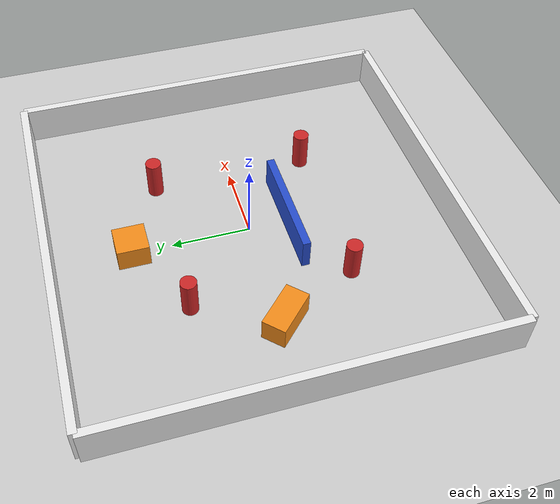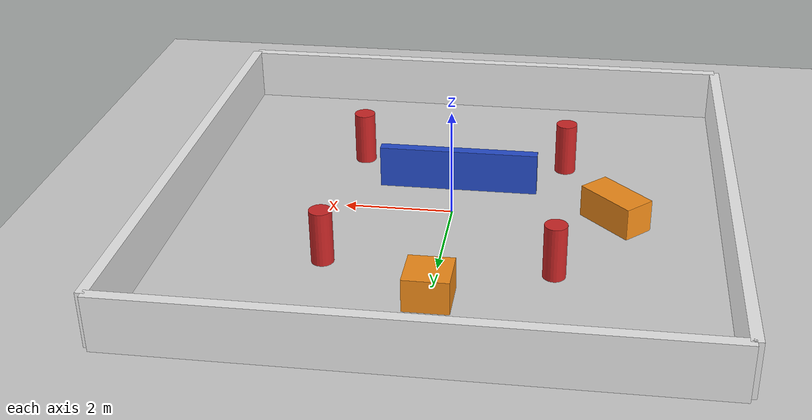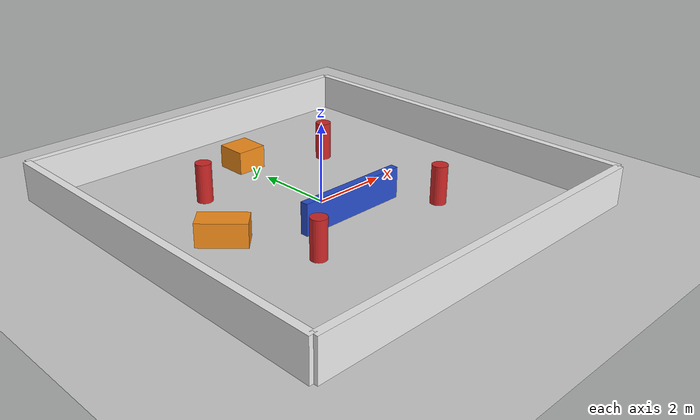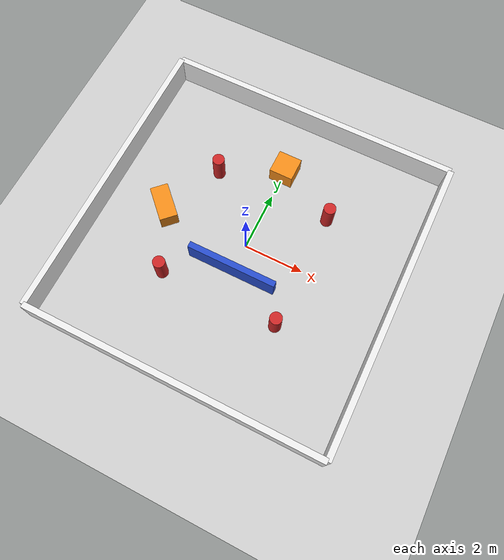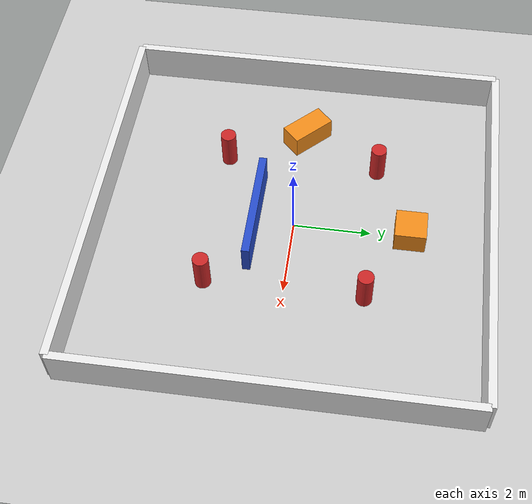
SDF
<?xml version="1.0" ?>
<sdf version="1.6">
  <world name="my_robot_world">

    <!--       PHYSICS & SCENE         -->
    <physics type="ode">
      <real_time_update_rate>1000.0</real_time_update_rate>
      <max_step_size>0.001</max_step_size>
      <real_time_factor>1</real_time_factor>
    </physics>

    <scene>
      <ambient>0.4 0.4 0.4 1</ambient>
      <background>0.7 0.7 0.7 1</background>
      <shadows>true</shadows>
    </scene>

    <!--     LIGHTING (Sun)            -->
    <light name="sun" type="directional">
      <cast_shadows>true</cast_shadows>
      <pose>0 0 10 0 0 0</pose>
      <diffuse>0.8 0.8 0.8 1</diffuse>
      <specular>0.2 0.2 0.2 1</specular>
      <attenuation>
        <range>1000</range>
        <constant>0.9</constant>
        <linear>0.01</linear>
        <quadratic>0.001</quadratic>
      </attenuation>
      <direction>-0.5 0.1 -0.9</direction>
    </light>

    <!--         GROUND PLANE          -->
    <model name="ground_plane">
      <static>true</static>
      <link name="link">
        <collision name="collision">
          <geometry>
            <plane>
              <normal>0 0 1</normal>
              <size>50 50</size>
            </plane>
          </geometry>
          <surface>
            <friction>
              <ode>
                <mu>100</mu>
                <mu2>50</mu2>
              </ode>
            </friction>
          </surface>
        </collision>
        <visual name="visual">
          <cast_shadows>false</cast_shadows>
          <geometry>
            <plane>
              <normal>0 0 1</normal>
              <size>50 50</size>
            </plane>
          </geometry>
          <material>
            <script>
              <uri>file://media/materials/scripts/gazebo.material</uri>
              <name>Gazebo/Grey</name>
            </script>
          </material>
        </visual>
      </link>
    </model>

    <!--       OUTER ROOM WALLS        -->
    <!-- North Wall -->
    <model name="wall_north">
      <static>true</static>
      <pose>0 5 0.5 0 0 0</pose>
      <link name="link">
        <collision name="collision">
          <geometry><box><size>10 0.2 1.0</size></box></geometry>
        </collision>
        <visual name="visual">
          <geometry><box><size>10 0.2 1.0</size></box></geometry>
          <material>
            <script>
              <uri>file://media/materials/scripts/gazebo.material</uri>
              <name>Gazebo/White</name>
            </script>
          </material>
        </visual>
      </link>
    </model>

    <!-- South Wall -->
    <model name="wall_south">
      <static>true</static>
      <pose>0 -5 0.5 0 0 0</pose>
      <link name="link">
        <collision name="collision">
          <geometry><box><size>10 0.2 1.0</size></box></geometry>
        </collision>
        <visual name="visual">
          <geometry><box><size>10 0.2 1.0</size></box></geometry>
          <material>
            <script>
              <uri>file://media/materials/scripts/gazebo.material</uri>
              <name>Gazebo/White</name>
            </script>
          </material>
        </visual>
      </link>
    </model>

    <!-- East Wall -->
    <model name="wall_east">
      <static>true</static>
      <pose>5 0 0.5 0 0 1.5707</pose>
      <link name="link">
        <collision name="collision">
          <geometry><box><size>10 0.2 1.0</size></box></geometry>
        </collision>
        <visual name="visual">
          <geometry><box><size>10 0.2 1.0</size></box></geometry>
          <material>
            <script>
              <uri>file://media/materials/scripts/gazebo.material</uri>
              <name>Gazebo/White</name>
            </script>
          </material>
        </visual>
      </link>
    </model>

    <!-- West Wall -->
    <model name="wall_west">
      <static>true</static>
      <pose>-5 0 0.5 0 0 1.5707</pose>
      <link name="link">
        <collision name="collision">
          <geometry><box><size>10 0.2 1.0</size></box></geometry>
        </collision>
        <visual name="visual">
          <geometry><box><size>10 0.2 1.0</size></box></geometry>
          <material>
            <script>
              <uri>file://media/materials/scripts/gazebo.material</uri>
              <name>Gazebo/White</name>
            </script>
          </material>
        </visual>
      </link>
    </model>

    <!--    INNER OBSTACLES / PILLARS  -->
    <!-- Pillar 1 -->
    <model name="pillar_1">
      <static>true</static>
      <pose>2 2 0.5 0 0 0</pose>
      <link name="link">
        <collision name="collision">
          <geometry><cylinder><radius>0.2</radius><length>1.0</length></cylinder></geometry>
        </collision>
        <visual name="visual">
          <geometry><cylinder><radius>0.2</radius><length>1.0</length></cylinder></geometry>
          <material>
            <script>
              <uri>file://media/materials/scripts/gazebo.material</uri>
              <name>Gazebo/Red</name>
            </script>
          </material>
        </visual>
      </link>
    </model>

    <!-- Pillar 2 -->
    <model name="pillar_2">
      <static>true</static>
      <pose>-2 2 0.5 0 0 0</pose>
      <link name="link">
        <collision name="collision">
          <geometry><cylinder><radius>0.2</radius><length>1.0</length></cylinder></geometry>
        </collision>
        <visual name="visual">
          <geometry><cylinder><radius>0.2</radius><length>1.0</length></cylinder></geometry>
          <material>
            <script>
              <uri>file://media/materials/scripts/gazebo.material</uri>
              <name>Gazebo/Red</name>
            </script>
          </material>
        </visual>
      </link>
    </model>

    <!-- Pillar 3 -->
    <model name="pillar_3">
      <static>true</static>
      <pose>2 -2 0.5 0 0 0</pose>
      <link name="link">
        <collision name="collision">
          <geometry><cylinder><radius>0.2</radius><length>1.0</length></cylinder></geometry>
        </collision>
        <visual name="visual">
          <geometry><cylinder><radius>0.2</radius><length>1.0</length></cylinder></geometry>
          <material>
            <script>
              <uri>file://media/materials/scripts/gazebo.material</uri>
              <name>Gazebo/Red</name>
            </script>
          </material>
        </visual>
      </link>
    </model>

    <!-- Pillar 4 -->
    <model name="pillar_4">
      <static>true</static>
      <pose>-2 -2 0.5 0 0 0</pose>
      <link name="link">
        <collision name="collision">
          <geometry><cylinder><radius>0.2</radius><length>1.0</length></cylinder></geometry>
        </collision>
        <visual name="visual">
          <geometry><cylinder><radius>0.2</radius><length>1.0</length></cylinder></geometry>
          <material>
            <script>
              <uri>file://media/materials/scripts/gazebo.material</uri>
              <name>Gazebo/Red</name>
            </script>
          </material>
        </visual>
      </link>
    </model>

    <!-- Box Obstacle 1 -->
    <model name="box_1">
      <static>true</static>
      <pose>0 3 0.3 0 0 0</pose>
      <link name="link">
        <collision name="collision">
          <geometry><box><size>0.8 0.8 0.6</size></box></geometry>
        </collision>
        <visual name="visual">
          <geometry><box><size>0.8 0.8 0.6</size></box></geometry>
          <material>
            <script>
              <uri>file://media/materials/scripts/gazebo.material</uri>
              <name>Gazebo/Orange</name>
            </script>
          </material>
        </visual>
      </link>
    </model>

    <!-- Box Obstacle 2 -->
    <model name="box_2">
      <static>true</static>
      <pose>-3 0 0.3 0 0 0.785</pose>
      <link name="link">
        <collision name="collision">
          <geometry><box><size>0.6 1.2 0.6</size></box></geometry>
        </collision>
        <visual name="visual">
          <geometry><box><size>0.6 1.2 0.6</size></box></geometry>
          <material>
            <script>
              <uri>file://media/materials/scripts/gazebo.material</uri>
              <name>Gazebo/Orange</name>
            </script>
          </material>
        </visual>
      </link>
    </model>

    <!-- Inner short wall (partial divider) -->
    <model name="inner_wall">
      <static>true</static>
      <pose>0 -1 0.4 0 0 0</pose>
      <link name="link">
        <collision name="collision">
          <geometry><box><size>3.0 0.2 0.8</size></box></geometry>
        </collision>
        <visual name="visual">
          <geometry><box><size>3.0 0.2 0.8</size></box></geometry>
          <material>
            <script>
              <uri>file://media/materials/scripts/gazebo.material</uri>
              <name>Gazebo/Blue</name>
            </script>
          </material>
        </visual>
      </link>
    </model>

  </world>
</sdf>
